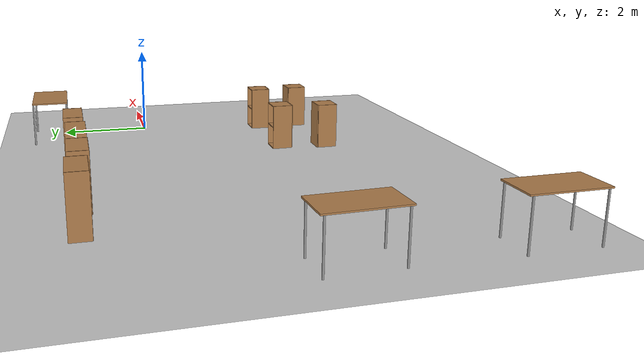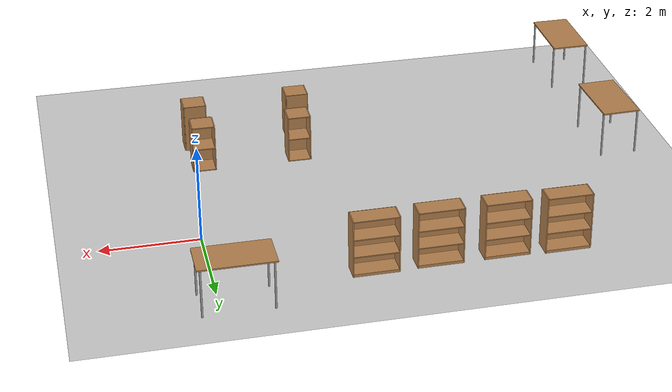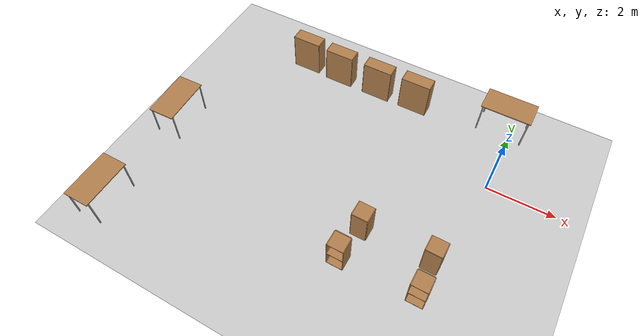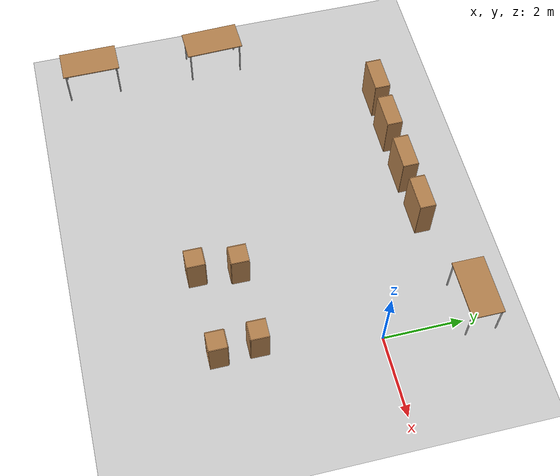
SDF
<sdf version="1.6">
 <world name="default">
  <model name="ground_plane">
   <static>1</static>
   <link name="link">
    <collision name="collision">
     <geometry><plane><normal>0 0 1</normal><size>100 100</size></plane></geometry>
     <surface><friction><ode><mu>100</mu><mu2>50</mu2></ode></friction></surface>
    </collision>
    <visual name="visual">
     <cast_shadows>0</cast_shadows>
     <geometry><plane><normal>0 0 1</normal><size>100 100</size></plane></geometry>
     <material>
      <script><uri>file://media/materials/scripts/gazebo.material</uri><name>Gazebo/Grey</name></script>
     </material>
    </visual>
   </link>
  </model>
  <model name="cabinet">
   <static>1</static>
   <link name="cabinet_bottom_plate">
    <inertial>
     <pose>0 0 -1 0 -0 0</pose>
     <inertia><ixx>2.05</ixx><ixy>0</ixy><ixz>0</ixz><iyy>2.05</iyy><iyz>0</iyz><izz>2.05</izz></inertia>
     <mass>25</mass>
    </inertial>
    <collision name="cabinet_bottom_plate_geom">
     <pose>0 0 0.01 0 -0 0</pose>
     <geometry><box><size>0.45 0.45 0.02</size></box></geometry>
    </collision>
    <visual name="cabinet_bottom_plate_geom_visual">
     <pose>0 0 0.01 0 -0 0</pose>
     <geometry><box><size>0.45 0.45 0.02</size></box></geometry>
     <material>
      <script><uri>file://media/materials/scripts/gazebo.material</uri><name>Gazebo/Wood</name></script>
     </material>
    </visual>
    <collision name="cabinet_bottom_plate_geom_cabinet_back_plate">
     <pose>0.235 0 0.51 0 -0 0</pose>
     <geometry><box><size>0.02 0.45 1.02</size></box></geometry>
    </collision>
    <visual name="cabinet_bottom_plate_geom_cabinet_back_plate_visual">
     <pose>0.235 0 0.51 0 -0 0</pose>
     <geometry><box><size>0.02 0.45 1.02</size></box></geometry>
     <material>
      <script><uri>file://media/materials/scripts/gazebo.material</uri><name>Gazebo/Wood</name></script>
     </material>
    </visual>
    <collision name="cabinet_bottom_plate_geom_cabinet_left_plate">
     <pose>0 0.235 0.51 0 -0 0</pose>
     <geometry><box><size>0.45 0.02 1.02</size></box></geometry>
    </collision>
    <visual name="cabinet_bottom_plate_geom_cabinet_left_plate_visual">
     <pose>0 0.235 0.51 0 -0 0</pose>
     <geometry><box><size>0.45 0.02 1.02</size></box></geometry>
     <material>
      <script><uri>file://media/materials/scripts/gazebo.material</uri><name>Gazebo/Wood</name></script>
     </material>
    </visual>
    <collision name="cabinet_bottom_plate_geom_cabinet_middle_plate">
     <pose>0 0 0.51 0 -0 0</pose>
     <geometry><box><size>0.45 0.45 0.02</size></box></geometry>
    </collision>
    <visual name="cabinet_bottom_plate_geom_cabinet_middle_plate_visual">
     <pose>0 0 0.51 0 -0 0</pose>
     <geometry><box><size>0.45 0.45 0.02</size></box></geometry>
     <material>
      <script><uri>file://media/materials/scripts/gazebo.material</uri><name>Gazebo/Wood</name></script>
     </material>
    </visual>
    <collision name="cabinet_bottom_plate_geom_cabinet_right_plate">
     <pose>0 -0.235 0.51 0 -0 0</pose>
     <geometry><box><size>0.45 0.02 1.02</size></box></geometry>
    </collision>
    <visual name="cabinet_bottom_plate_geom_cabinet_right_plate_visual">
     <pose>0 -0.235 0.51 0 -0 0</pose>
     <geometry><box><size>0.45 0.02 1.02</size></box></geometry>
     <material>
      <script><uri>file://media/materials/scripts/gazebo.material</uri><name>Gazebo/Wood</name></script>
     </material>
    </visual>
    <collision name="cabinet_bottom_plate_geom_cabinet_top_plate">
     <pose>0 0 1.01 0 -0 0</pose>
     <geometry><box><size>0.45 0.45 0.02</size></box></geometry>
    </collision>
    <visual name="cabinet_bottom_plate_geom_cabinet_top_plate_visual">
     <pose>0 0 1.01 0 -0 0</pose>
     <geometry><box><size>0.45 0.45 0.02</size></box></geometry>
     <material>
      <script><uri>file://media/materials/scripts/gazebo.material</uri><name>Gazebo/Wood</name></script>
     </material>
    </visual>
   </link>
   <pose>-2.63131 -4.00518 0 0 -0 1.56831</pose>
  </model>
  <model name="cabinet_clone">
   <static>1</static>
   <link name="cabinet_bottom_plate">
    <inertial>
     <pose>0 0 -1 0 -0 0</pose>
     <inertia><ixx>2.05</ixx><ixy>0</ixy><ixz>0</ixz><iyy>2.05</iyy><iyz>0</iyz><izz>2.05</izz></inertia>
     <mass>25</mass>
    </inertial>
    <collision name="cabinet_bottom_plate_geom">
     <pose>0 0 0.01 0 -0 0</pose>
     <geometry><box><size>0.45 0.45 0.02</size></box></geometry>
    </collision>
    <visual name="cabinet_bottom_plate_geom_visual">
     <pose>0 0 0.01 0 -0 0</pose>
     <geometry><box><size>0.45 0.45 0.02</size></box></geometry>
     <material>
      <script><uri>file://media/materials/scripts/gazebo.material</uri><name>Gazebo/Wood</name></script>
     </material>
    </visual>
    <collision name="cabinet_bottom_plate_geom_cabinet_back_plate">
     <pose>0.235 0 0.51 0 -0 0</pose>
     <geometry><box><size>0.02 0.45 1.02</size></box></geometry>
    </collision>
    <visual name="cabinet_bottom_plate_geom_cabinet_back_plate_visual">
     <pose>0.235 0 0.51 0 -0 0</pose>
     <geometry><box><size>0.02 0.45 1.02</size></box></geometry>
     <material>
      <script><uri>file://media/materials/scripts/gazebo.material</uri><name>Gazebo/Wood</name></script>
     </material>
    </visual>
    <collision name="cabinet_bottom_plate_geom_cabinet_left_plate">
     <pose>0 0.235 0.51 0 -0 0</pose>
     <geometry><box><size>0.45 0.02 1.02</size></box></geometry>
    </collision>
    <visual name="cabinet_bottom_plate_geom_cabinet_left_plate_visual">
     <pose>0 0.235 0.51 0 -0 0</pose>
     <geometry><box><size>0.45 0.02 1.02</size></box></geometry>
     <material>
      <script><uri>file://media/materials/scripts/gazebo.material</uri><name>Gazebo/Wood</name></script>
     </material>
    </visual>
    <collision name="cabinet_bottom_plate_geom_cabinet_middle_plate">
     <pose>0 0 0.51 0 -0 0</pose>
     <geometry><box><size>0.45 0.45 0.02</size></box></geometry>
    </collision>
    <visual name="cabinet_bottom_plate_geom_cabinet_middle_plate_visual">
     <pose>0 0 0.51 0 -0 0</pose>
     <geometry><box><size>0.45 0.45 0.02</size></box></geometry>
     <material>
      <script><uri>file://media/materials/scripts/gazebo.material</uri><name>Gazebo/Wood</name></script>
     </material>
    </visual>
    <collision name="cabinet_bottom_plate_geom_cabinet_right_plate">
     <pose>0 -0.235 0.51 0 -0 0</pose>
     <geometry><box><size>0.45 0.02 1.02</size></box></geometry>
    </collision>
    <visual name="cabinet_bottom_plate_geom_cabinet_right_plate_visual">
     <pose>0 -0.235 0.51 0 -0 0</pose>
     <geometry><box><size>0.45 0.02 1.02</size></box></geometry>
     <material>
      <script><uri>file://media/materials/scripts/gazebo.material</uri><name>Gazebo/Wood</name></script>
     </material>
    </visual>
    <collision name="cabinet_bottom_plate_geom_cabinet_top_plate">
     <pose>0 0 1.01 0 -0 0</pose>
     <geometry><box><size>0.45 0.45 0.02</size></box></geometry>
    </collision>
    <visual name="cabinet_bottom_plate_geom_cabinet_top_plate_visual">
     <pose>0 0 1.01 0 -0 0</pose>
     <geometry><box><size>0.45 0.45 0.02</size></box></geometry>
     <material>
      <script><uri>file://media/materials/scripts/gazebo.material</uri><name>Gazebo/Wood</name></script>
     </material>
    </visual>
   </link>
   <pose>-0.421201 -3.93847 0 0 -0 1.56831</pose>
  </model>
  <model name="cabinet_0_clone">
   <static>1</static>
   <link name="cabinet_bottom_plate">
    <inertial>
     <pose>0 0 -1 0 -0 0</pose>
     <inertia><ixx>2.05</ixx><ixy>0</ixy><ixz>0</ixz><iyy>2.05</iyy><iyz>0</iyz><izz>2.05</izz></inertia>
     <mass>25</mass>
    </inertial>
    <collision name="cabinet_bottom_plate_geom">
     <pose>0 0 0.01 0 -0 0</pose>
     <geometry><box><size>0.45 0.45 0.02</size></box></geometry>
    </collision>
    <visual name="cabinet_bottom_plate_geom_visual">
     <pose>0 0 0.01 0 -0 0</pose>
     <geometry><box><size>0.45 0.45 0.02</size></box></geometry>
     <material>
      <script><uri>file://media/materials/scripts/gazebo.material</uri><name>Gazebo/Wood</name></script>
     </material>
    </visual>
    <collision name="cabinet_bottom_plate_geom_cabinet_back_plate">
     <pose>0.235 0 0.51 0 -0 0</pose>
     <geometry><box><size>0.02 0.45 1.02</size></box></geometry>
    </collision>
    <visual name="cabinet_bottom_plate_geom_cabinet_back_plate_visual">
     <pose>0.235 0 0.51 0 -0 0</pose>
     <geometry><box><size>0.02 0.45 1.02</size></box></geometry>
     <material>
      <script><uri>file://media/materials/scripts/gazebo.material</uri><name>Gazebo/Wood</name></script>
     </material>
    </visual>
    <collision name="cabinet_bottom_plate_geom_cabinet_left_plate">
     <pose>0 0.235 0.51 0 -0 0</pose>
     <geometry><box><size>0.45 0.02 1.02</size></box></geometry>
    </collision>
    <visual name="cabinet_bottom_plate_geom_cabinet_left_plate_visual">
     <pose>0 0.235 0.51 0 -0 0</pose>
     <geometry><box><size>0.45 0.02 1.02</size></box></geometry>
     <material>
      <script><uri>file://media/materials/scripts/gazebo.material</uri><name>Gazebo/Wood</name></script>
     </material>
    </visual>
    <collision name="cabinet_bottom_plate_geom_cabinet_middle_plate">
     <pose>0 0 0.51 0 -0 0</pose>
     <geometry><box><size>0.45 0.45 0.02</size></box></geometry>
    </collision>
    <visual name="cabinet_bottom_plate_geom_cabinet_middle_plate_visual">
     <pose>0 0 0.51 0 -0 0</pose>
     <geometry><box><size>0.45 0.45 0.02</size></box></geometry>
     <material>
      <script><uri>file://media/materials/scripts/gazebo.material</uri><name>Gazebo/Wood</name></script>
     </material>
    </visual>
    <collision name="cabinet_bottom_plate_geom_cabinet_right_plate">
     <pose>0 -0.235 0.51 0 -0 0</pose>
     <geometry><box><size>0.45 0.02 1.02</size></box></geometry>
    </collision>
    <visual name="cabinet_bottom_plate_geom_cabinet_right_plate_visual">
     <pose>0 -0.235 0.51 0 -0 0</pose>
     <geometry><box><size>0.45 0.02 1.02</size></box></geometry>
     <material>
      <script><uri>file://media/materials/scripts/gazebo.material</uri><name>Gazebo/Wood</name></script>
     </material>
    </visual>
    <collision name="cabinet_bottom_plate_geom_cabinet_top_plate">
     <pose>0 0 1.01 0 -0 0</pose>
     <geometry><box><size>0.45 0.45 0.02</size></box></geometry>
    </collision>
    <visual name="cabinet_bottom_plate_geom_cabinet_top_plate_visual">
     <pose>0 0 1.01 0 -0 0</pose>
     <geometry><box><size>0.45 0.45 0.02</size></box></geometry>
     <material>
      <script><uri>file://media/materials/scripts/gazebo.material</uri><name>Gazebo/Wood</name></script>
     </material>
    </visual>
   </link>
   <pose>-0.466112 -2.93967 0 0 0 -1.58045</pose>
  </model>
  <model name="cabinet_0_clone_0">
   <static>1</static>
   <link name="cabinet_bottom_plate">
    <inertial>
     <pose>0 0 -1 0 -0 0</pose>
     <inertia><ixx>2.05</ixx><ixy>0</ixy><ixz>0</ixz><iyy>2.05</iyy><iyz>0</iyz><izz>2.05</izz></inertia>
     <mass>25</mass>
    </inertial>
    <collision name="cabinet_bottom_plate_geom">
     <pose>0 0 0.01 0 -0 0</pose>
     <geometry><box><size>0.45 0.45 0.02</size></box></geometry>
    </collision>
    <visual name="cabinet_bottom_plate_geom_visual">
     <pose>0 0 0.01 0 -0 0</pose>
     <geometry><box><size>0.45 0.45 0.02</size></box></geometry>
     <material>
      <script><uri>file://media/materials/scripts/gazebo.material</uri><name>Gazebo/Wood</name></script>
     </material>
    </visual>
    <collision name="cabinet_bottom_plate_geom_cabinet_back_plate">
     <pose>0.235 0 0.51 0 -0 0</pose>
     <geometry><box><size>0.02 0.45 1.02</size></box></geometry>
    </collision>
    <visual name="cabinet_bottom_plate_geom_cabinet_back_plate_visual">
     <pose>0.235 0 0.51 0 -0 0</pose>
     <geometry><box><size>0.02 0.45 1.02</size></box></geometry>
     <material>
      <script><uri>file://media/materials/scripts/gazebo.material</uri><name>Gazebo/Wood</name></script>
     </material>
    </visual>
    <collision name="cabinet_bottom_plate_geom_cabinet_left_plate">
     <pose>0 0.235 0.51 0 -0 0</pose>
     <geometry><box><size>0.45 0.02 1.02</size></box></geometry>
    </collision>
    <visual name="cabinet_bottom_plate_geom_cabinet_left_plate_visual">
     <pose>0 0.235 0.51 0 -0 0</pose>
     <geometry><box><size>0.45 0.02 1.02</size></box></geometry>
     <material>
      <script><uri>file://media/materials/scripts/gazebo.material</uri><name>Gazebo/Wood</name></script>
     </material>
    </visual>
    <collision name="cabinet_bottom_plate_geom_cabinet_middle_plate">
     <pose>0 0 0.51 0 -0 0</pose>
     <geometry><box><size>0.45 0.45 0.02</size></box></geometry>
    </collision>
    <visual name="cabinet_bottom_plate_geom_cabinet_middle_plate_visual">
     <pose>0 0 0.51 0 -0 0</pose>
     <geometry><box><size>0.45 0.45 0.02</size></box></geometry>
     <material>
      <script><uri>file://media/materials/scripts/gazebo.material</uri><name>Gazebo/Wood</name></script>
     </material>
    </visual>
    <collision name="cabinet_bottom_plate_geom_cabinet_right_plate">
     <pose>0 -0.235 0.51 0 -0 0</pose>
     <geometry><box><size>0.45 0.02 1.02</size></box></geometry>
    </collision>
    <visual name="cabinet_bottom_plate_geom_cabinet_right_plate_visual">
     <pose>0 -0.235 0.51 0 -0 0</pose>
     <geometry><box><size>0.45 0.02 1.02</size></box></geometry>
     <material>
      <script><uri>file://media/materials/scripts/gazebo.material</uri><name>Gazebo/Wood</name></script>
     </material>
    </visual>
    <collision name="cabinet_bottom_plate_geom_cabinet_top_plate">
     <pose>0 0 1.01 0 -0 0</pose>
     <geometry><box><size>0.45 0.45 0.02</size></box></geometry>
    </collision>
    <visual name="cabinet_bottom_plate_geom_cabinet_top_plate_visual">
     <pose>0 0 1.01 0 -0 0</pose>
     <geometry><box><size>0.45 0.45 0.02</size></box></geometry>
     <material>
      <script><uri>file://media/materials/scripts/gazebo.material</uri><name>Gazebo/Wood</name></script>
     </material>
    </visual>
   </link>
   <pose>-2.48745 -2.94768 0 0 0 -1.58045</pose>
  </model>
  <model name="bookshelf">
   <static>1</static>
   <link name="link">
    <inertial><mass>1</mass></inertial>
    <collision name="back">
     <pose>0 0.005 0.6 0 -0 0</pose>
     <geometry><box><size>0.9 0.01 1.2</size></box></geometry>
    </collision>
    <visual name="visual1">
     <pose>0 0.005 0.6 0 -0 0</pose>
     <geometry><box><size>0.9 0.01 1.2</size></box></geometry>
     <material>
      <script><uri>file://media/materials/scripts/gazebo.material</uri><name>Gazebo/Wood</name></script>
     </material>
    </visual>
    <collision name="left_side">
     <pose>0.45 -0.195 0.6 0 -0 0</pose>
     <geometry><box><size>0.02 0.4 1.2</size></box></geometry>
    </collision>
    <visual name="visual2">
     <pose>0.45 -0.195 0.6 0 -0 0</pose>
     <geometry><box><size>0.02 0.4 1.2</size></box></geometry>
     <material>
      <script><uri>file://media/materials/scripts/gazebo.material</uri><name>Gazebo/Wood</name></script>
     </material>
    </visual>
    <collision name="right_side">
     <pose>-0.45 -0.195 0.6 0 -0 0</pose>
     <geometry><box><size>0.02 0.4 1.2</size></box></geometry>
    </collision>
    <visual name="visual3">
     <pose>-0.45 -0.195 0.6 0 -0 0</pose>
     <geometry><box><size>0.02 0.4 1.2</size></box></geometry>
     <material>
      <script><uri>file://media/materials/scripts/gazebo.material</uri><name>Gazebo/Wood</name></script>
     </material>
    </visual>
    <collision name="bottom">
     <pose>0 -0.195 0.03 0 -0 0</pose>
     <geometry><box><size>0.88 0.4 0.06</size></box></geometry>
    </collision>
    <visual name="visual4">
     <pose>0 -0.195 0.03 0 -0 0</pose>
     <geometry><box><size>0.88 0.4 0.06</size></box></geometry>
     <material>
      <script><uri>file://media/materials/scripts/gazebo.material</uri><name>Gazebo/Wood</name></script>
     </material>
    </visual>
    <collision name="top">
     <pose>0 -0.195 1.19 0 -0 0</pose>
     <geometry><box><size>0.88 0.4 0.02</size></box></geometry>
    </collision>
    <visual name="visual5">
     <pose>0 -0.195 1.19 0 -0 0</pose>
     <geometry><box><size>0.88 0.4 0.02</size></box></geometry>
     <material>
      <script><uri>file://media/materials/scripts/gazebo.material</uri><name>Gazebo/Wood</name></script>
     </material>
    </visual>
    <collision name="low_shelf">
     <pose>0 -0.195 0.43 0 -0 0</pose>
     <geometry><box><size>0.88 0.4 0.02</size></box></geometry>
    </collision>
    <visual name="visual6">
     <pose>0 -0.195 0.43 0 -0 0</pose>
     <geometry><box><size>0.88 0.4 0.02</size></box></geometry>
     <material>
      <script><uri>file://media/materials/scripts/gazebo.material</uri><name>Gazebo/Wood</name></script>
     </material>
    </visual>
    <collision name="high_shelf">
     <pose>0 -0.195 0.8 0 -0 0</pose>
     <geometry><box><size>0.88 0.4 0.02</size></box></geometry>
    </collision>
    <visual name="visual7">
     <pose>0 -0.195 0.8 0 -0 0</pose>
     <geometry><box><size>0.88 0.4 0.02</size></box></geometry>
     <material>
      <script><uri>file://media/materials/scripts/gazebo.material</uri><name>Gazebo/Wood</name></script>
     </material>
    </visual>
   </link>
   <pose>-3.04696 1.62096 0 0 0 -3.13808</pose>
  </model>
  <model name="bookshelf_clone">
   <static>1</static>
   <link name="link">
    <inertial><mass>1</mass></inertial>
    <collision name="back">
     <pose>0 0.005 0.6 0 -0 0</pose>
     <geometry><box><size>0.9 0.01 1.2</size></box></geometry>
    </collision>
    <visual name="visual1">
     <pose>0 0.005 0.6 0 -0 0</pose>
     <geometry><box><size>0.9 0.01 1.2</size></box></geometry>
     <material>
      <script><uri>file://media/materials/scripts/gazebo.material</uri><name>Gazebo/Wood</name></script>
     </material>
    </visual>
    <collision name="left_side">
     <pose>0.45 -0.195 0.6 0 -0 0</pose>
     <geometry><box><size>0.02 0.4 1.2</size></box></geometry>
    </collision>
    <visual name="visual2">
     <pose>0.45 -0.195 0.6 0 -0 0</pose>
     <geometry><box><size>0.02 0.4 1.2</size></box></geometry>
     <material>
      <script><uri>file://media/materials/scripts/gazebo.material</uri><name>Gazebo/Wood</name></script>
     </material>
    </visual>
    <collision name="right_side">
     <pose>-0.45 -0.195 0.6 0 -0 0</pose>
     <geometry><box><size>0.02 0.4 1.2</size></box></geometry>
    </collision>
    <visual name="visual3">
     <pose>-0.45 -0.195 0.6 0 -0 0</pose>
     <geometry><box><size>0.02 0.4 1.2</size></box></geometry>
     <material>
      <script><uri>file://media/materials/scripts/gazebo.material</uri><name>Gazebo/Wood</name></script>
     </material>
    </visual>
    <collision name="bottom">
     <pose>0 -0.195 0.03 0 -0 0</pose>
     <geometry><box><size>0.88 0.4 0.06</size></box></geometry>
    </collision>
    <visual name="visual4">
     <pose>0 -0.195 0.03 0 -0 0</pose>
     <geometry><box><size>0.88 0.4 0.06</size></box></geometry>
     <material>
      <script><uri>file://media/materials/scripts/gazebo.material</uri><name>Gazebo/Wood</name></script>
     </material>
    </visual>
    <collision name="top">
     <pose>0 -0.195 1.19 0 -0 0</pose>
     <geometry><box><size>0.88 0.4 0.02</size></box></geometry>
    </collision>
    <visual name="visual5">
     <pose>0 -0.195 1.19 0 -0 0</pose>
     <geometry><box><size>0.88 0.4 0.02</size></box></geometry>
     <material>
      <script><uri>file://media/materials/scripts/gazebo.material</uri><name>Gazebo/Wood</name></script>
     </material>
    </visual>
    <collision name="low_shelf">
     <pose>0 -0.195 0.43 0 -0 0</pose>
     <geometry><box><size>0.88 0.4 0.02</size></box></geometry>
    </collision>
    <visual name="visual6">
     <pose>0 -0.195 0.43 0 -0 0</pose>
     <geometry><box><size>0.88 0.4 0.02</size></box></geometry>
     <material>
      <script><uri>file://media/materials/scripts/gazebo.material</uri><name>Gazebo/Wood</name></script>
     </material>
    </visual>
    <collision name="high_shelf">
     <pose>0 -0.195 0.8 0 -0 0</pose>
     <geometry><box><size>0.88 0.4 0.02</size></box></geometry>
    </collision>
    <visual name="visual7">
     <pose>0 -0.195 0.8 0 -0 0</pose>
     <geometry><box><size>0.88 0.4 0.02</size></box></geometry>
     <material>
      <script><uri>file://media/materials/scripts/gazebo.material</uri><name>Gazebo/Wood</name></script>
     </material>
    </visual>
   </link>
   <pose>-4.30833 1.58598 0 0 0 -3.13808</pose>
  </model>
  <model name="bookshelf_clone_0">
   <static>1</static>
   <link name="link">
    <inertial><mass>1</mass></inertial>
    <collision name="back">
     <pose>0 0.005 0.6 0 -0 0</pose>
     <geometry><box><size>0.9 0.01 1.2</size></box></geometry>
    </collision>
    <visual name="visual1">
     <pose>0 0.005 0.6 0 -0 0</pose>
     <geometry><box><size>0.9 0.01 1.2</size></box></geometry>
     <material>
      <script><uri>file://media/materials/scripts/gazebo.material</uri><name>Gazebo/Wood</name></script>
     </material>
    </visual>
    <collision name="left_side">
     <pose>0.45 -0.195 0.6 0 -0 0</pose>
     <geometry><box><size>0.02 0.4 1.2</size></box></geometry>
    </collision>
    <visual name="visual2">
     <pose>0.45 -0.195 0.6 0 -0 0</pose>
     <geometry><box><size>0.02 0.4 1.2</size></box></geometry>
     <material>
      <script><uri>file://media/materials/scripts/gazebo.material</uri><name>Gazebo/Wood</name></script>
     </material>
    </visual>
    <collision name="right_side">
     <pose>-0.45 -0.195 0.6 0 -0 0</pose>
     <geometry><box><size>0.02 0.4 1.2</size></box></geometry>
    </collision>
    <visual name="visual3">
     <pose>-0.45 -0.195 0.6 0 -0 0</pose>
     <geometry><box><size>0.02 0.4 1.2</size></box></geometry>
     <material>
      <script><uri>file://media/materials/scripts/gazebo.material</uri><name>Gazebo/Wood</name></script>
     </material>
    </visual>
    <collision name="bottom">
     <pose>0 -0.195 0.03 0 -0 0</pose>
     <geometry><box><size>0.88 0.4 0.06</size></box></geometry>
    </collision>
    <visual name="visual4">
     <pose>0 -0.195 0.03 0 -0 0</pose>
     <geometry><box><size>0.88 0.4 0.06</size></box></geometry>
     <material>
      <script><uri>file://media/materials/scripts/gazebo.material</uri><name>Gazebo/Wood</name></script>
     </material>
    </visual>
    <collision name="top">
     <pose>0 -0.195 1.19 0 -0 0</pose>
     <geometry><box><size>0.88 0.4 0.02</size></box></geometry>
    </collision>
    <visual name="visual5">
     <pose>0 -0.195 1.19 0 -0 0</pose>
     <geometry><box><size>0.88 0.4 0.02</size></box></geometry>
     <material>
      <script><uri>file://media/materials/scripts/gazebo.material</uri><name>Gazebo/Wood</name></script>
     </material>
    </visual>
    <collision name="low_shelf">
     <pose>0 -0.195 0.43 0 -0 0</pose>
     <geometry><box><size>0.88 0.4 0.02</size></box></geometry>
    </collision>
    <visual name="visual6">
     <pose>0 -0.195 0.43 0 -0 0</pose>
     <geometry><box><size>0.88 0.4 0.02</size></box></geometry>
     <material>
      <script><uri>file://media/materials/scripts/gazebo.material</uri><name>Gazebo/Wood</name></script>
     </material>
    </visual>
    <collision name="high_shelf">
     <pose>0 -0.195 0.8 0 -0 0</pose>
     <geometry><box><size>0.88 0.4 0.02</size></box></geometry>
    </collision>
    <visual name="visual7">
     <pose>0 -0.195 0.8 0 -0 0</pose>
     <geometry><box><size>0.88 0.4 0.02</size></box></geometry>
     <material>
      <script><uri>file://media/materials/scripts/gazebo.material</uri><name>Gazebo/Wood</name></script>
     </material>
    </visual>
   </link>
   <pose>-5.6288 1.57754 0 0 0 -3.13808</pose>
  </model>
  <model name="bookshelf_clone_1">
   <static>1</static>
   <link name="link">
    <inertial><mass>1</mass></inertial>
    <collision name="back">
     <pose>0 0.005 0.6 0 -0 0</pose>
     <geometry><box><size>0.9 0.01 1.2</size></box></geometry>
    </collision>
    <visual name="visual1">
     <pose>0 0.005 0.6 0 -0 0</pose>
     <geometry><box><size>0.9 0.01 1.2</size></box></geometry>
     <material>
      <script><uri>file://media/materials/scripts/gazebo.material</uri><name>Gazebo/Wood</name></script>
     </material>
    </visual>
    <collision name="left_side">
     <pose>0.45 -0.195 0.6 0 -0 0</pose>
     <geometry><box><size>0.02 0.4 1.2</size></box></geometry>
    </collision>
    <visual name="visual2">
     <pose>0.45 -0.195 0.6 0 -0 0</pose>
     <geometry><box><size>0.02 0.4 1.2</size></box></geometry>
     <material>
      <script><uri>file://media/materials/scripts/gazebo.material</uri><name>Gazebo/Wood</name></script>
     </material>
    </visual>
    <collision name="right_side">
     <pose>-0.45 -0.195 0.6 0 -0 0</pose>
     <geometry><box><size>0.02 0.4 1.2</size></box></geometry>
    </collision>
    <visual name="visual3">
     <pose>-0.45 -0.195 0.6 0 -0 0</pose>
     <geometry><box><size>0.02 0.4 1.2</size></box></geometry>
     <material>
      <script><uri>file://media/materials/scripts/gazebo.material</uri><name>Gazebo/Wood</name></script>
     </material>
    </visual>
    <collision name="bottom">
     <pose>0 -0.195 0.03 0 -0 0</pose>
     <geometry><box><size>0.88 0.4 0.06</size></box></geometry>
    </collision>
    <visual name="visual4">
     <pose>0 -0.195 0.03 0 -0 0</pose>
     <geometry><box><size>0.88 0.4 0.06</size></box></geometry>
     <material>
      <script><uri>file://media/materials/scripts/gazebo.material</uri><name>Gazebo/Wood</name></script>
     </material>
    </visual>
    <collision name="top">
     <pose>0 -0.195 1.19 0 -0 0</pose>
     <geometry><box><size>0.88 0.4 0.02</size></box></geometry>
    </collision>
    <visual name="visual5">
     <pose>0 -0.195 1.19 0 -0 0</pose>
     <geometry><box><size>0.88 0.4 0.02</size></box></geometry>
     <material>
      <script><uri>file://media/materials/scripts/gazebo.material</uri><name>Gazebo/Wood</name></script>
     </material>
    </visual>
    <collision name="low_shelf">
     <pose>0 -0.195 0.43 0 -0 0</pose>
     <geometry><box><size>0.88 0.4 0.02</size></box></geometry>
    </collision>
    <visual name="visual6">
     <pose>0 -0.195 0.43 0 -0 0</pose>
     <geometry><box><size>0.88 0.4 0.02</size></box></geometry>
     <material>
      <script><uri>file://media/materials/scripts/gazebo.material</uri><name>Gazebo/Wood</name></script>
     </material>
    </visual>
    <collision name="high_shelf">
     <pose>0 -0.195 0.8 0 -0 0</pose>
     <geometry><box><size>0.88 0.4 0.02</size></box></geometry>
    </collision>
    <visual name="visual7">
     <pose>0 -0.195 0.8 0 -0 0</pose>
     <geometry><box><size>0.88 0.4 0.02</size></box></geometry>
     <material>
      <script><uri>file://media/materials/scripts/gazebo.material</uri><name>Gazebo/Wood</name></script>
     </material>
    </visual>
   </link>
   <pose>-6.83429 1.61464 0 0 0 -3.13808</pose>
  </model>
  <model name="table">
   <static>1</static>
   <link name="link">
    <collision name="surface">
     <pose>0 0 1 0 -0 0</pose>
     <geometry><box><size>1.5 0.8 0.03</size></box></geometry>
     <surface><friction><ode><mu>0.6</mu><mu2>0.6</mu2></ode></friction></surface>
    </collision>
    <visual name="visual1">
     <pose>0 0 1 0 -0 0</pose>
     <geometry><box><size>1.5 0.8 0.03</size></box></geometry>
     <material>
      <script><uri>file://media/materials/scripts/gazebo.material</uri><name>Gazebo/Wood</name></script>
     </material>
    </visual>
    <collision name="front_left_leg">
     <pose>0.68 0.38 0.5 0 -0 0</pose>
     <geometry><cylinder><radius>0.02</radius><length>1</length></cylinder></geometry>
    </collision>
    <visual name="front_left_leg">
     <pose>0.68 0.38 0.5 0 -0 0</pose>
     <geometry><cylinder><radius>0.02</radius><length>1</length></cylinder></geometry>
     <material>
      <script><uri>file://media/materials/scripts/gazebo.material</uri><name>Gazebo/Grey</name></script>
     </material>
    </visual>
    <collision name="front_right_leg">
     <pose>0.68 -0.38 0.5 0 -0 0</pose>
     <geometry><cylinder><radius>0.02</radius><length>1</length></cylinder></geometry>
    </collision>
    <visual name="front_right_leg">
     <pose>0.68 -0.38 0.5 0 -0 0</pose>
     <geometry><cylinder><radius>0.02</radius><length>1</length></cylinder></geometry>
     <material>
      <script><uri>file://media/materials/scripts/gazebo.material</uri><name>Gazebo/Grey</name></script>
     </material>
    </visual>
    <collision name="back_right_leg">
     <pose>-0.68 -0.38 0.5 0 -0 0</pose>
     <geometry><cylinder><radius>0.02</radius><length>1</length></cylinder></geometry>
    </collision>
    <visual name="back_right_leg">
     <pose>-0.68 -0.38 0.5 0 -0 0</pose>
     <geometry><cylinder><radius>0.02</radius><length>1</length></cylinder></geometry>
     <material>
      <script><uri>file://media/materials/scripts/gazebo.material</uri><name>Gazebo/Grey</name></script>
     </material>
    </visual>
    <collision name="back_left_leg">
     <pose>-0.68 0.38 0.5 0 -0 0</pose>
     <geometry><cylinder><radius>0.02</radius><length>1</length></cylinder></geometry>
    </collision>
    <visual name="back_left_leg">
     <pose>-0.68 0.38 0.5 0 -0 0</pose>
     <geometry><cylinder><radius>0.02</radius><length>1</length></cylinder></geometry>
     <material>
      <script><uri>file://media/materials/scripts/gazebo.material</uri><name>Gazebo/Grey</name></script>
     </material>
    </visual>
   </link>
   <pose>-9.13193 -2.2002 0 0 -0 1.60328</pose>
  </model>
  <model name="table_0">
   <static>1</static>
   <link name="link">
    <collision name="surface">
     <pose>0 0 1 0 -0 0</pose>
     <geometry><box><size>1.5 0.8 0.03</size></box></geometry>
     <surface><friction><ode><mu>0.6</mu><mu2>0.6</mu2></ode></friction></surface>
    </collision>
    <visual name="visual1">
     <pose>0 0 1 0 -0 0</pose>
     <geometry><box><size>1.5 0.8 0.03</size></box></geometry>
     <material>
      <script><uri>file://media/materials/scripts/gazebo.material</uri><name>Gazebo/Wood</name></script>
     </material>
    </visual>
    <collision name="front_left_leg">
     <pose>0.68 0.38 0.5 0 -0 0</pose>
     <geometry><cylinder><radius>0.02</radius><length>1</length></cylinder></geometry>
    </collision>
    <visual name="front_left_leg">
     <pose>0.68 0.38 0.5 0 -0 0</pose>
     <geometry><cylinder><radius>0.02</radius><length>1</length></cylinder></geometry>
     <material>
      <script><uri>file://media/materials/scripts/gazebo.material</uri><name>Gazebo/Grey</name></script>
     </material>
    </visual>
    <collision name="front_right_leg">
     <pose>0.68 -0.38 0.5 0 -0 0</pose>
     <geometry><cylinder><radius>0.02</radius><length>1</length></cylinder></geometry>
    </collision>
    <visual name="front_right_leg">
     <pose>0.68 -0.38 0.5 0 -0 0</pose>
     <geometry><cylinder><radius>0.02</radius><length>1</length></cylinder></geometry>
     <material>
      <script><uri>file://media/materials/scripts/gazebo.material</uri><name>Gazebo/Grey</name></script>
     </material>
    </visual>
    <collision name="back_right_leg">
     <pose>-0.68 -0.38 0.5 0 -0 0</pose>
     <geometry><cylinder><radius>0.02</radius><length>1</length></cylinder></geometry>
    </collision>
    <visual name="back_right_leg">
     <pose>-0.68 -0.38 0.5 0 -0 0</pose>
     <geometry><cylinder><radius>0.02</radius><length>1</length></cylinder></geometry>
     <material>
      <script><uri>file://media/materials/scripts/gazebo.material</uri><name>Gazebo/Grey</name></script>
     </material>
    </visual>
    <collision name="back_left_leg">
     <pose>-0.68 0.38 0.5 0 -0 0</pose>
     <geometry><cylinder><radius>0.02</radius><length>1</length></cylinder></geometry>
    </collision>
    <visual name="back_left_leg">
     <pose>-0.68 0.38 0.5 0 -0 0</pose>
     <geometry><cylinder><radius>0.02</radius><length>1</length></cylinder></geometry>
     <material>
      <script><uri>file://media/materials/scripts/gazebo.material</uri><name>Gazebo/Grey</name></script>
     </material>
    </visual>
   </link>
   <pose>-9.17445 -5.55546 0 0 0 -1.56687</pose>
  </model>
  <model name="table_2">
   <static>1</static>
   <link name="link">
    <collision name="surface">
     <pose>0 0 1 0 -0 0</pose>
     <geometry><box><size>1.5 0.8 0.03</size></box></geometry>
     <surface><friction><ode><mu>0.6</mu><mu2>0.6</mu2></ode></friction></surface>
    </collision>
    <visual name="visual1">
     <pose>0 0 1 0 -0 0</pose>
     <geometry><box><size>1.5 0.8 0.03</size></box></geometry>
     <material>
      <script><uri>file://media/materials/scripts/gazebo.material</uri><name>Gazebo/Wood</name></script>
     </material>
    </visual>
    <collision name="front_left_leg">
     <pose>0.68 0.38 0.5 0 -0 0</pose>
     <geometry><cylinder><radius>0.02</radius><length>1</length></cylinder></geometry>
    </collision>
    <visual name="front_left_leg">
     <pose>0.68 0.38 0.5 0 -0 0</pose>
     <geometry><cylinder><radius>0.02</radius><length>1</length></cylinder></geometry>
     <material>
      <script><uri>file://media/materials/scripts/gazebo.material</uri><name>Gazebo/Grey</name></script>
     </material>
    </visual>
    <collision name="front_right_leg">
     <pose>0.68 -0.38 0.5 0 -0 0</pose>
     <geometry><cylinder><radius>0.02</radius><length>1</length></cylinder></geometry>
    </collision>
    <visual name="front_right_leg">
     <pose>0.68 -0.38 0.5 0 -0 0</pose>
     <geometry><cylinder><radius>0.02</radius><length>1</length></cylinder></geometry>
     <material>
      <script><uri>file://media/materials/scripts/gazebo.material</uri><name>Gazebo/Grey</name></script>
     </material>
    </visual>
    <collision name="back_right_leg">
     <pose>-0.68 -0.38 0.5 0 -0 0</pose>
     <geometry><cylinder><radius>0.02</radius><length>1</length></cylinder></geometry>
    </collision>
    <visual name="back_right_leg">
     <pose>-0.68 -0.38 0.5 0 -0 0</pose>
     <geometry><cylinder><radius>0.02</radius><length>1</length></cylinder></geometry>
     <material>
      <script><uri>file://media/materials/scripts/gazebo.material</uri><name>Gazebo/Grey</name></script>
     </material>
    </visual>
    <collision name="back_left_leg">
     <pose>-0.68 0.38 0.5 0 -0 0</pose>
     <geometry><cylinder><radius>0.02</radius><length>1</length></cylinder></geometry>
    </collision>
    <visual name="back_left_leg">
     <pose>-0.68 0.38 0.5 0 -0 0</pose>
     <geometry><cylinder><radius>0.02</radius><length>1</length></cylinder></geometry>
     <material>
      <script><uri>file://media/materials/scripts/gazebo.material</uri><name>Gazebo/Grey</name></script>
     </material>
    </visual>
   </link>
   <pose>-0.323378 2.32245 0 0 -0 0</pose>
  </model>
 </world>
</sdf>
